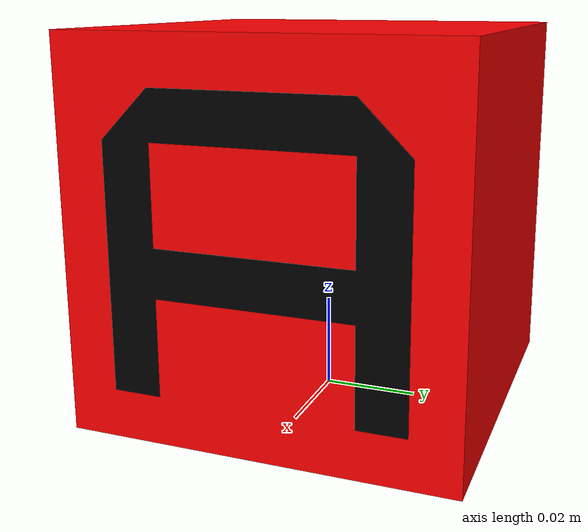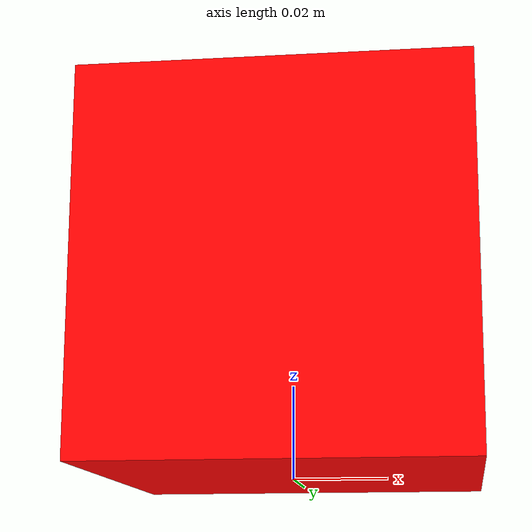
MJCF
<mujoco model="cubeA">
    <default>
        <default class="visual">
            <geom group="2" type="mesh" contype="0" conaffinity="0"/>
        </default>
        <default class="collision">
            <geom group="3" type="box"/>
        </default>
    </default>
    <asset>
        <material name="Material" specular="1.0" shininess="0.09607843099999999" rgba="1.000000 1.000000 1.000000 1.000000" texuniform="true"/>
        <material name="Material.001" specular="0.0" shininess="0.09607843099999999" rgba="0.000000 0.000000 0.000000 1.000000" texuniform="true"/>
        <mesh file="meshes/cubeA_0.obj"/>
        <mesh file="meshes/cubeA_1.obj"/>
    </asset>
    <worldbody>
        <body name="cubeA">
            <geom mesh="cubeA_0" material="Material.001" class="visual"/>
            <geom mesh="cubeA_1" material="Material" class="visual" rgba="1 0 0 1"/>

            <geom class="collision" pos="0.00027 -0.000078 0.040286" size="0.04 0.04 0.04" name="cubeA"/>
        </body>
    </worldbody>
</mujoco>
